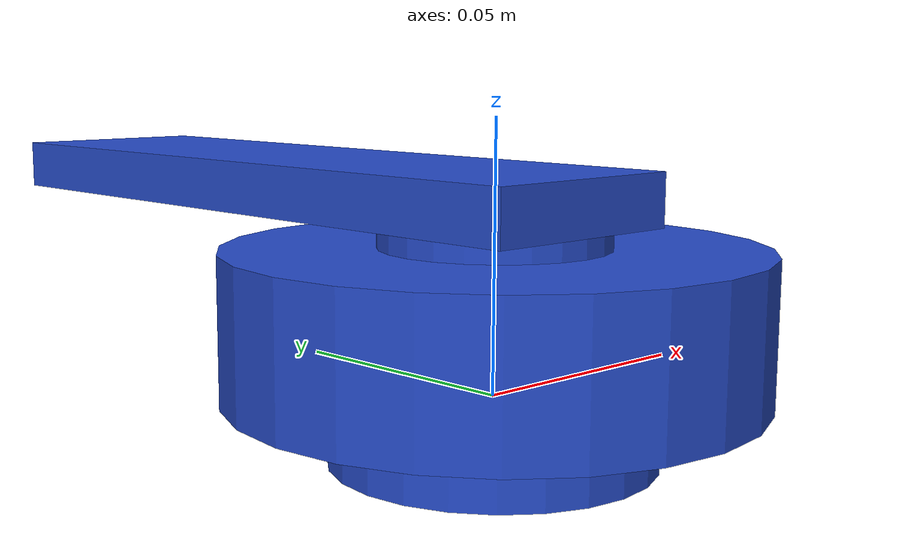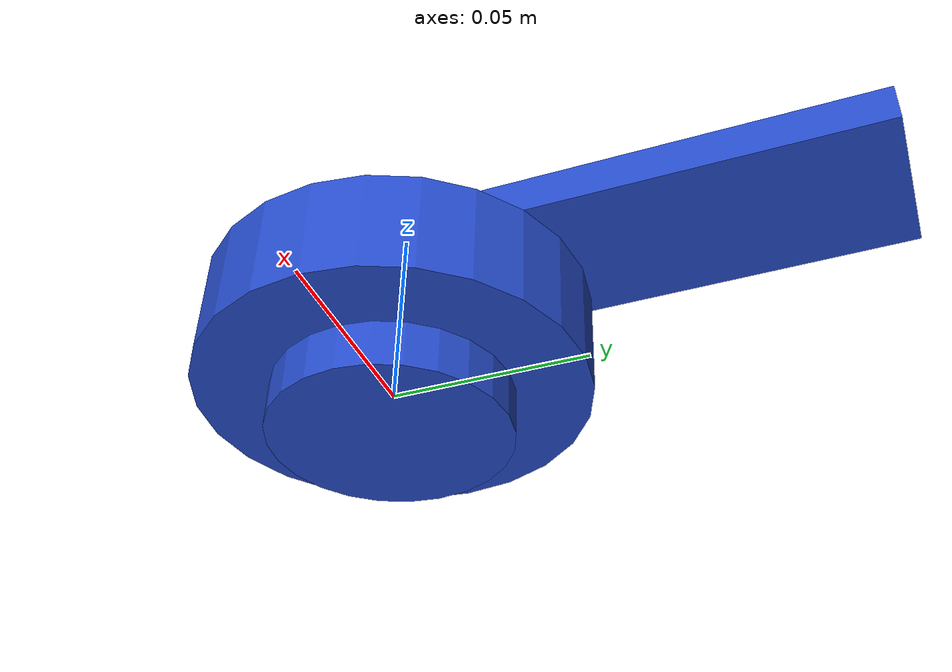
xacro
<?xml version="1.0"?>
<robot xmlns:xacro="http://www.ros.org/wiki/xacro">

    <link name="body_link">
        <visual>
            <geometry>
                <cylinder radius="${0.098/2}" length="0.027" />
            </geometry>
            <origin xyz="0 0 ${0.027/2}" rpy="0 0 0" />
            <material name="blue" />
        </visual>
        <collision>
            <geometry>
                <cylinder radius="${0.098/2}" length="0.027" />
            </geometry>
            <origin xyz="0 0 ${0.027/2}" rpy="0 0 0" />
        </collision>
        <xacro:cylinder_inertia m="0.600" r="${0.098/2}"
            h="0.027"
            xyz="0 0 ${0.027/2}" rpy="0 0 0" />
    </link>

    <link name="cover_link">
        <visual>
            <geometry>
                <cylinder radius="${0.06/2}" length="0.012" />
            </geometry>
            <origin xyz="0 0 -${0.012/2}" rpy="0 0 0" />
            <material name="blue" />
        </visual>
        <collision>
            <geometry>
                <cylinder radius="${0.06/2}" length="0.012" />
            </geometry>
            <origin xyz="0 0 -${0.012/2}" rpy="0 0 0" />
        </collision>
        <xacro:cylinder_inertia m="0.01" r="${0.06/2}"
            h="0.012"
            xyz="0 0 -${0.012/2}" rpy="0 0 0" />
    </link>

    <link name="shaft_link">
        <visual>
            <geometry>
                <cylinder radius="${0.042/2}" length="0.0035" />
            </geometry>
            <origin xyz="0 0 ${0.0035/2}" rpy="0 0 0" />
            <material name="blue" />
        </visual>
        <collision>
            <geometry>
                <cylinder radius="${0.098/2}" length="0.0035" />
            </geometry>
            <origin xyz="0 0 ${0.0035/2}" rpy="0 0 0" />
        </collision>
        <xacro:cylinder_inertia m="0.1" r="${0.098/2}"
            h="0.0035"
            xyz="0 0 ${0.0035/2}" rpy="0 0 0" />
    </link>

    <link name="arm_link">
        <visual>
            <geometry>
                <box size="0.042 0.15 0.01" />
            </geometry>
            <origin xyz="0 ${(0.15/2)-(0.042/2)} ${0.01/2}" rpy="0 0 0" />
            <material name="blue" />
        </visual>
        <collision>
            <geometry>
                <box size="0.042 0.15 0.01" />
            </geometry>
            <origin xyz="0 ${(0.15/2)-(0.042/2)} ${0.01/2}" rpy="0 0 0" />
        </collision>
        <xacro:box_inertia m="0.2" l="0.042" w="0.15" h="0.01" xyz="0 ${(0.15/2)-(0.042/2)} ${0.01/2}" rpy="0 0 0" />
    </link>

    <joint name="body_cover_joint" type="fixed">
        <parent link="body_link" />
        <child link="cover_link" />
        <origin xyz="0 0 0" rpy="0 0 0" />
    </joint>

    <joint name="body_shaft_joint" type="continuous">
        <parent link="body_link" />
        <child link="shaft_link" />
        <origin xyz="0 0 0.027" rpy="0 0 0" />
        <axis xyz="0 0 1" />
    </joint>

    <joint name="shaft_arm_joint" type="fixed">
        <parent link="shaft_link" />
        <child link="arm_link" />
        <origin xyz="0 0 0.0035" rpy="0 0 0" />
    </joint>
</robot>
